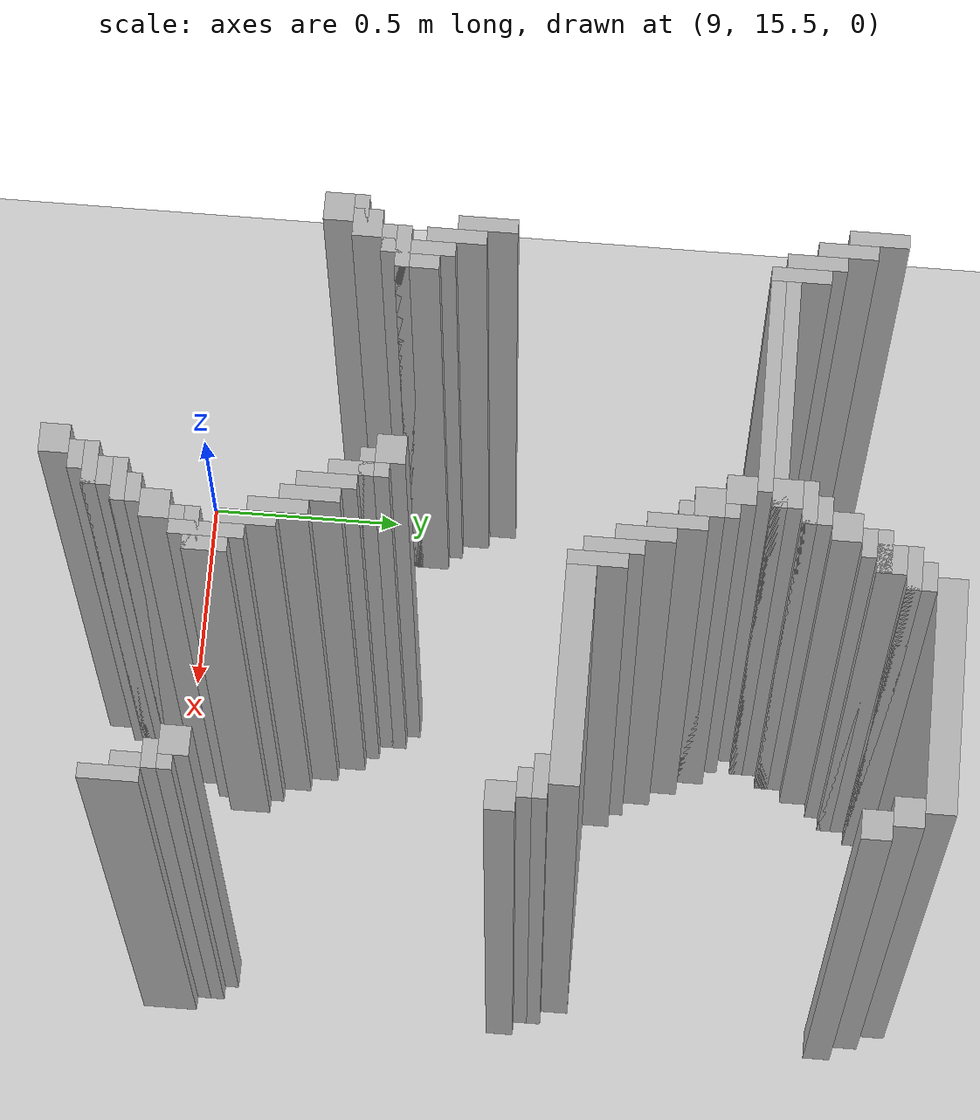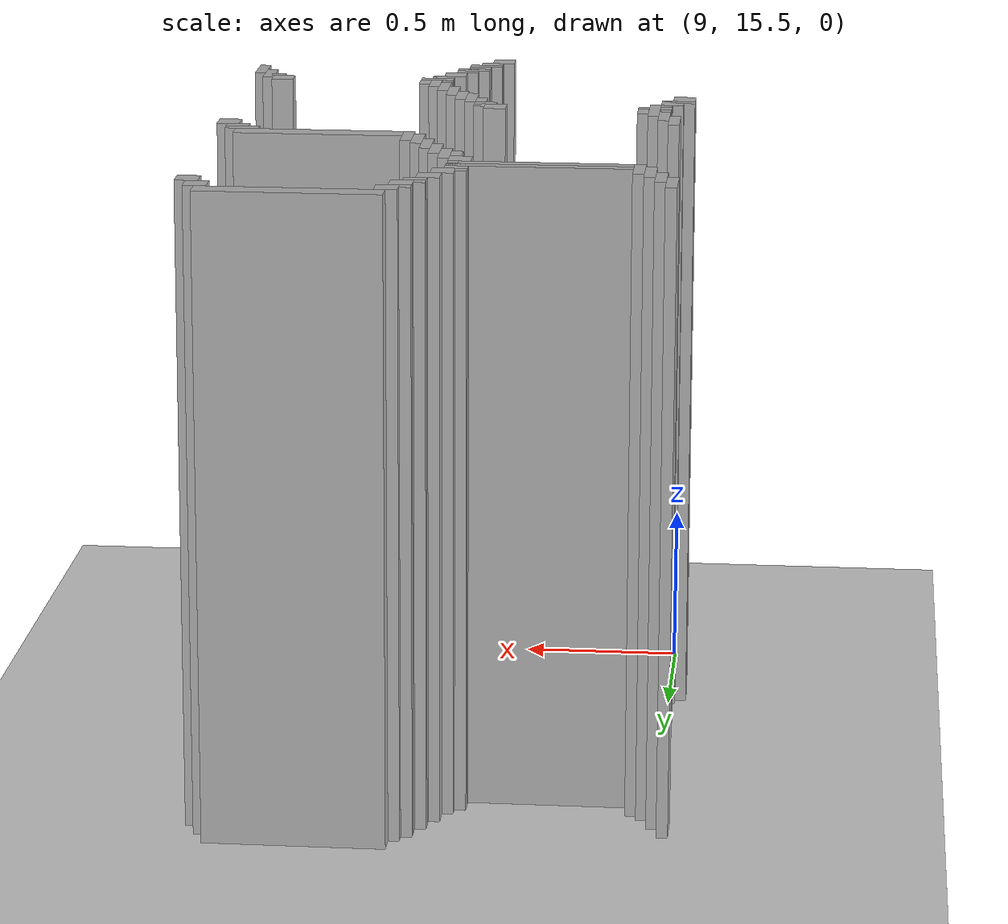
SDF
<sdf version="1.6">
 <world name="slam_world">
  <model name="ground_plane">
   <static>true</static>
   <link name="link">
    <collision name="collision">
     <geometry><plane><normal>0 0 1</normal><size>100 100</size></plane></geometry>
    </collision>
    <visual name="visual">
     <geometry><plane><normal>0 0 1</normal><size>100 100</size></plane></geometry>
     <material>
      <ambient>0.8 0.8 0.8 1</ambient>
      <diffuse>0.8 0.8 0.8 1</diffuse>
      <specular>0.8 0.8 0.8 1</specular>
     </material>
    </visual>
   </link>
  </model>
  <model name="wall_7">
   <static>true</static>
   <pose>10.058004640371228 17.366589327146173 1.0 0 0 0</pose>
   <link name="link">
    <collision name="collision">
     <geometry><box><size>0.5568445475638051 0.06960556844547564 2.0</size></box></geometry>
    </collision>
    <visual name="visual">
     <geometry><box><size>0.5568445475638051 0.06960556844547564 2.0</size></box></geometry>
     <material><ambient>0.5 0.5 0.5 1</ambient><diffuse>0.7 0.7 0.7 1</diffuse></material>
    </visual>
   </link>
  </model>
  <model name="wall_23">
   <static>true</static>
   <pose>9.779582366589327 17.296983758700694 1.0 0 0 0</pose>
   <link name="link">
    <collision name="collision">
     <geometry><box><size>0.06960556844547564 0.06960556844547564 2.0</size></box></geometry>
    </collision>
    <visual name="visual">
     <geometry><box><size>0.06960556844547564 0.06960556844547564 2.0</size></box></geometry>
     <material><ambient>0.5 0.5 0.5 1</ambient><diffuse>0.7 0.7 0.7 1</diffuse></material>
    </visual>
   </link>
  </model>
  <model name="wall_24">
   <static>true</static>
   <pose>10.336426914153131 17.296983758700694 1.0 0 0 0</pose>
   <link name="link">
    <collision name="collision">
     <geometry><box><size>0.06960556844547564 0.06960556844547564 2.0</size></box></geometry>
    </collision>
    <visual name="visual">
     <geometry><box><size>0.06960556844547564 0.06960556844547564 2.0</size></box></geometry>
     <material><ambient>0.5 0.5 0.5 1</ambient><diffuse>0.7 0.7 0.7 1</diffuse></material>
    </visual>
   </link>
  </model>
  <model name="wall_43">
   <static>true</static>
   <pose>9.762180974477959 17.279582366589327 1.0 0 0 0</pose>
   <link name="link">
    <collision name="collision">
     <geometry><box><size>0.10440835266821345 0.03480278422273782 2.0</size></box></geometry>
    </collision>
    <visual name="visual">
     <geometry><box><size>0.10440835266821345 0.03480278422273782 2.0</size></box></geometry>
     <material><ambient>0.5 0.5 0.5 1</ambient><diffuse>0.7 0.7 0.7 1</diffuse></material>
    </visual>
   </link>
  </model>
  <model name="wall_63">
   <static>true</static>
   <pose>9.744779582366588 17.22737819025522 1.0 0 0 0</pose>
   <link name="link">
    <collision name="collision">
     <geometry><box><size>0.06960556844547564 0.06960556844547564 2.0</size></box></geometry>
    </collision>
    <visual name="visual">
     <geometry><box><size>0.06960556844547564 0.06960556844547564 2.0</size></box></geometry>
     <material><ambient>0.5 0.5 0.5 1</ambient><diffuse>0.7 0.7 0.7 1</diffuse></material>
    </visual>
   </link>
  </model>
  <model name="wall_64">
   <static>true</static>
   <pose>10.37122969837587 17.22737819025522 1.0 0 0 0</pose>
   <link name="link">
    <collision name="collision">
     <geometry><box><size>0.06960556844547564 0.06960556844547564 2.0</size></box></geometry>
    </collision>
    <visual name="visual">
     <geometry><box><size>0.06960556844547564 0.06960556844547564 2.0</size></box></geometry>
     <material><ambient>0.5 0.5 0.5 1</ambient><diffuse>0.7 0.7 0.7 1</diffuse></material>
    </visual>
   </link>
  </model>
  <model name="wall_82">
   <static>true</static>
   <pose>8.961716937354987 17.157772621809745 1.0 0 0 0</pose>
   <link name="link">
    <collision name="collision">
     <geometry><box><size>0.03480278422273782 0.13921113689095127 2.0</size></box></geometry>
    </collision>
    <visual name="visual">
     <geometry><box><size>0.03480278422273782 0.13921113689095127 2.0</size></box></geometry>
     <material><ambient>0.5 0.5 0.5 1</ambient><diffuse>0.7 0.7 0.7 1</diffuse></material>
    </visual>
   </link>
  </model>
  <model name="wall_83">
   <static>true</static>
   <pose>9.72737819025522 17.209976798143853 1.0 0 0 0</pose>
   <link name="link">
    <collision name="collision">
     <geometry><box><size>0.10440835266821345 0.03480278422273782 2.0</size></box></geometry>
    </collision>
    <visual name="visual">
     <geometry><box><size>0.10440835266821345 0.03480278422273782 2.0</size></box></geometry>
     <material><ambient>0.5 0.5 0.5 1</ambient><diffuse>0.7 0.7 0.7 1</diffuse></material>
    </visual>
   </link>
  </model>
  <model name="wall_97">
   <static>true</static>
   <pose>9.70997679814385 17.17517401392111 1.0 0 0 0</pose>
   <link name="link">
    <collision name="collision">
     <geometry><box><size>0.06960556844547564 0.03480278422273782 2.0</size></box></geometry>
    </collision>
    <visual name="visual">
     <geometry><box><size>0.06960556844547564 0.03480278422273782 2.0</size></box></geometry>
     <material><ambient>0.5 0.5 0.5 1</ambient><diffuse>0.7 0.7 0.7 1</diffuse></material>
    </visual>
   </link>
  </model>
  <model name="wall_112">
   <static>true</static>
   <pose>8.996519721577727 17.08816705336427 1.0 0 0 0</pose>
   <link name="link">
    <collision name="collision">
     <geometry><box><size>0.03480278422273782 0.13921113689095127 2.0</size></box></geometry>
    </collision>
    <visual name="visual">
     <geometry><box><size>0.03480278422273782 0.13921113689095127 2.0</size></box></geometry>
     <material><ambient>0.5 0.5 0.5 1</ambient><diffuse>0.7 0.7 0.7 1</diffuse></material>
    </visual>
   </link>
  </model>
  <model name="wall_113">
   <static>true</static>
   <pose>9.675174013921113 17.122969837587007 1.0 0 0 0</pose>
   <link name="link">
    <collision name="collision">
     <geometry><box><size>0.06960556844547564 0.06960556844547564 2.0</size></box></geometry>
    </collision>
    <visual name="visual">
     <geometry><box><size>0.06960556844547564 0.06960556844547564 2.0</size></box></geometry>
     <material><ambient>0.5 0.5 0.5 1</ambient><diffuse>0.7 0.7 0.7 1</diffuse></material>
    </visual>
   </link>
  </model>
  <model name="wall_132">
   <static>true</static>
   <pose>9.031322505800464 17.01856148491879 1.0 0 0 0</pose>
   <link name="link">
    <collision name="collision">
     <geometry><box><size>0.03480278422273782 0.13921113689095127 2.0</size></box></geometry>
    </collision>
    <visual name="visual">
     <geometry><box><size>0.03480278422273782 0.13921113689095127 2.0</size></box></geometry>
     <material><ambient>0.5 0.5 0.5 1</ambient><diffuse>0.7 0.7 0.7 1</diffuse></material>
    </visual>
   </link>
  </model>
  <model name="wall_133">
   <static>true</static>
   <pose>9.640371229698376 17.053364269141532 1.0 0 0 0</pose>
   <link name="link">
    <collision name="collision">
     <geometry><box><size>0.06960556844547564 0.06960556844547564 2.0</size></box></geometry>
    </collision>
    <visual name="visual">
     <geometry><box><size>0.06960556844547564 0.06960556844547564 2.0</size></box></geometry>
     <material><ambient>0.5 0.5 0.5 1</ambient><diffuse>0.7 0.7 0.7 1</diffuse></material>
    </visual>
   </link>
  </model>
  <model name="wall_152">
   <static>true</static>
   <pose>9.066125290023201 16.983758700696054 1.0 0 0 0</pose>
   <link name="link">
    <collision name="collision">
     <geometry><box><size>0.03480278422273782 0.13921113689095127 2.0</size></box></geometry>
    </collision>
    <visual name="visual">
     <geometry><box><size>0.03480278422273782 0.13921113689095127 2.0</size></box></geometry>
     <material><ambient>0.5 0.5 0.5 1</ambient><diffuse>0.7 0.7 0.7 1</diffuse></material>
    </visual>
   </link>
  </model>
  <model name="wall_153">
   <static>true</static>
   <pose>9.622969837587007 17.035962877030162 1.0 0 0 0</pose>
   <link name="link">
    <collision name="collision">
     <geometry><box><size>0.10440835266821345 0.03480278422273782 2.0</size></box></geometry>
    </collision>
    <visual name="visual">
     <geometry><box><size>0.10440835266821345 0.03480278422273782 2.0</size></box></geometry>
     <material><ambient>0.5 0.5 0.5 1</ambient><diffuse>0.7 0.7 0.7 1</diffuse></material>
    </visual>
   </link>
  </model>
  <model name="wall_167">
   <static>true</static>
   <pose>9.605568445475638 16.983758700696054 1.0 0 0 0</pose>
   <link name="link">
    <collision name="collision">
     <geometry><box><size>0.06960556844547564 0.06960556844547564 2.0</size></box></geometry>
    </collision>
    <visual name="visual">
     <geometry><box><size>0.06960556844547564 0.06960556844547564 2.0</size></box></geometry>
     <material><ambient>0.5 0.5 0.5 1</ambient><diffuse>0.7 0.7 0.7 1</diffuse></material>
    </visual>
   </link>
  </model>
  <model name="wall_177">
   <static>true</static>
   <pose>9.361948955916473 16.966357308584687 1.0 0 0 0</pose>
   <link name="link">
    <collision name="collision">
     <geometry><box><size>0.5568445475638051 0.03480278422273782 2.0</size></box></geometry>
    </collision>
    <visual name="visual">
     <geometry><box><size>0.5568445475638051 0.03480278422273782 2.0</size></box></geometry>
     <material><ambient>0.5 0.5 0.5 1</ambient><diffuse>0.7 0.7 0.7 1</diffuse></material>
    </visual>
   </link>
  </model>
  <model name="wall_188">
   <static>true</static>
   <pose>9.344547563805104 16.93155452436195 1.0 0 0 0</pose>
   <link name="link">
    <collision name="collision">
     <geometry><box><size>0.5220417633410672 0.03480278422273782 2.0</size></box></geometry>
    </collision>
    <visual name="visual">
     <geometry><box><size>0.5220417633410672 0.03480278422273782 2.0</size></box></geometry>
     <material><ambient>0.5 0.5 0.5 1</ambient><diffuse>0.7 0.7 0.7 1</diffuse></material>
    </visual>
   </link>
  </model>
  <model name="wall_198">
   <static>true</static>
   <pose>9.605568445475638 16.87935034802784 1.0 0 0 0</pose>
   <link name="link">
    <collision name="collision">
     <geometry><box><size>0.06960556844547564 0.06960556844547564 2.0</size></box></geometry>
    </collision>
    <visual name="visual">
     <geometry><box><size>0.06960556844547564 0.06960556844547564 2.0</size></box></geometry>
     <material><ambient>0.5 0.5 0.5 1</ambient><diffuse>0.7 0.7 0.7 1</diffuse></material>
    </visual>
   </link>
  </model>
  <model name="wall_208">
   <static>true</static>
   <pose>9.657772621809745 16.809744779582367 1.0 0 0 0</pose>
   <link name="link">
    <collision name="collision">
     <geometry><box><size>0.03480278422273782 0.13921113689095127 2.0</size></box></geometry>
    </collision>
    <visual name="visual">
     <geometry><box><size>0.03480278422273782 0.13921113689095127 2.0</size></box></geometry>
     <material><ambient>0.5 0.5 0.5 1</ambient><diffuse>0.7 0.7 0.7 1</diffuse></material>
    </visual>
   </link>
  </model>
  <model name="wall_218">
   <static>true</static>
   <pose>9.640371229698376 16.809744779582367 1.0 0 0 0</pose>
   <link name="link">
    <collision name="collision">
     <geometry><box><size>0.06960556844547564 0.06960556844547564 2.0</size></box></geometry>
    </collision>
    <visual name="visual">
     <geometry><box><size>0.06960556844547564 0.06960556844547564 2.0</size></box></geometry>
     <material><ambient>0.5 0.5 0.5 1</ambient><diffuse>0.7 0.7 0.7 1</diffuse></material>
    </visual>
   </link>
  </model>
  <model name="wall_228">
   <static>true</static>
   <pose>9.692575406032482 16.74013921113689 1.0 0 0 0</pose>
   <link name="link">
    <collision name="collision">
     <geometry><box><size>0.03480278422273782 0.13921113689095127 2.0</size></box></geometry>
    </collision>
    <visual name="visual">
     <geometry><box><size>0.03480278422273782 0.13921113689095127 2.0</size></box></geometry>
     <material><ambient>0.5 0.5 0.5 1</ambient><diffuse>0.7 0.7 0.7 1</diffuse></material>
    </visual>
   </link>
  </model>
  <model name="wall_244">
   <static>true</static>
   <pose>9.72737819025522 16.670533642691414 1.0 0 0 0</pose>
   <link name="link">
    <collision name="collision">
     <geometry><box><size>0.03480278422273782 0.13921113689095127 2.0</size></box></geometry>
    </collision>
    <visual name="visual">
     <geometry><box><size>0.03480278422273782 0.13921113689095127 2.0</size></box></geometry>
     <material><ambient>0.5 0.5 0.5 1</ambient><diffuse>0.7 0.7 0.7 1</diffuse></material>
    </visual>
   </link>
  </model>
  <model name="wall_254">
   <static>true</static>
   <pose>9.762180974477959 16.60092807424594 1.0 0 0 0</pose>
   <link name="link">
    <collision name="collision">
     <geometry><box><size>0.03480278422273782 0.13921113689095127 2.0</size></box></geometry>
    </collision>
    <visual name="visual">
     <geometry><box><size>0.03480278422273782 0.13921113689095127 2.0</size></box></geometry>
     <material><ambient>0.5 0.5 0.5 1</ambient><diffuse>0.7 0.7 0.7 1</diffuse></material>
    </visual>
   </link>
  </model>
  <model name="wall_264">
   <static>true</static>
   <pose>9.796983758700696 16.5661252900232 1.0 0 0 0</pose>
   <link name="link">
    <collision name="collision">
     <geometry><box><size>0.03480278422273782 0.13921113689095127 2.0</size></box></geometry>
    </collision>
    <visual name="visual">
     <geometry><box><size>0.03480278422273782 0.13921113689095127 2.0</size></box></geometry>
     <material><ambient>0.5 0.5 0.5 1</ambient><diffuse>0.7 0.7 0.7 1</diffuse></material>
    </visual>
   </link>
  </model>
  <model name="wall_282">
   <static>true</static>
   <pose>10.075406032482599 16.531322505800464 1.0 0 0 0</pose>
   <link name="link">
    <collision name="collision">
     <geometry><box><size>0.5220417633410672 0.06960556844547564 2.0</size></box></geometry>
    </collision>
    <visual name="visual">
     <geometry><box><size>0.5220417633410672 0.06960556844547564 2.0</size></box></geometry>
     <material><ambient>0.5 0.5 0.5 1</ambient><diffuse>0.7 0.7 0.7 1</diffuse></material>
    </visual>
   </link>
  </model>
  <model name="wall_301">
   <static>true</static>
   <pose>10.319025522041763 16.479118329466356 1.0 0 0 0</pose>
   <link name="link">
    <collision name="collision">
     <geometry><box><size>0.10440835266821345 0.03480278422273782 2.0</size></box></geometry>
    </collision>
    <visual name="visual">
     <geometry><box><size>0.10440835266821345 0.03480278422273782 2.0</size></box></geometry>
     <material><ambient>0.5 0.5 0.5 1</ambient><diffuse>0.7 0.7 0.7 1</diffuse></material>
    </visual>
   </link>
  </model>
  <model name="wall_311">
   <static>true</static>
   <pose>10.336426914153131 16.44431554524362 1.0 0 0 0</pose>
   <link name="link">
    <collision name="collision">
     <geometry><box><size>0.06960556844547564 0.03480278422273782 2.0</size></box></geometry>
    </collision>
    <visual name="visual">
     <geometry><box><size>0.06960556844547564 0.03480278422273782 2.0</size></box></geometry>
     <material><ambient>0.5 0.5 0.5 1</ambient><diffuse>0.7 0.7 0.7 1</diffuse></material>
    </visual>
   </link>
  </model>
  <model name="wall_324">
   <static>true</static>
   <pose>10.37122969837587 16.39211136890951 1.0 0 0 0</pose>
   <link name="link">
    <collision name="collision">
     <geometry><box><size>0.06960556844547564 0.06960556844547564 2.0</size></box></geometry>
    </collision>
    <visual name="visual">
     <geometry><box><size>0.06960556844547564 0.06960556844547564 2.0</size></box></geometry>
     <material><ambient>0.5 0.5 0.5 1</ambient><diffuse>0.7 0.7 0.7 1</diffuse></material>
    </visual>
   </link>
  </model>
  <model name="wall_362">
   <static>true</static>
   <pose>8.996519721577727 16.25290023201856 1.0 0 0 0</pose>
   <link name="link">
    <collision name="collision">
     <geometry><box><size>0.03480278422273782 0.13921113689095127 2.0</size></box></geometry>
    </collision>
    <visual name="visual">
     <geometry><box><size>0.03480278422273782 0.13921113689095127 2.0</size></box></geometry>
     <material><ambient>0.5 0.5 0.5 1</ambient><diffuse>0.7 0.7 0.7 1</diffuse></material>
    </visual>
   </link>
  </model>
  <model name="wall_380">
   <static>true</static>
   <pose>9.031322505800464 16.183294663573086 1.0 0 0 0</pose>
   <link name="link">
    <collision name="collision">
     <geometry><box><size>0.03480278422273782 0.13921113689095127 2.0</size></box></geometry>
    </collision>
    <visual name="visual">
     <geometry><box><size>0.03480278422273782 0.13921113689095127 2.0</size></box></geometry>
     <material><ambient>0.5 0.5 0.5 1</ambient><diffuse>0.7 0.7 0.7 1</diffuse></material>
    </visual>
   </link>
  </model>
  <model name="wall_398">
   <static>true</static>
   <pose>9.066125290023201 16.09628770301624 1.0 0 0 0</pose>
   <link name="link">
    <collision name="collision">
     <geometry><box><size>0.03480278422273782 0.17401392111368907 2.0</size></box></geometry>
    </collision>
    <visual name="visual">
     <geometry><box><size>0.03480278422273782 0.17401392111368907 2.0</size></box></geometry>
     <material><ambient>0.5 0.5 0.5 1</ambient><diffuse>0.7 0.7 0.7 1</diffuse></material>
    </visual>
   </link>
  </model>
  <model name="wall_411">
   <static>true</static>
   <pose>9.100928074245939 16.09628770301624 1.0 0 0 0</pose>
   <link name="link">
    <collision name="collision">
     <geometry><box><size>0.03480278422273782 0.10440835266821345 2.0</size></box></geometry>
    </collision>
    <visual name="visual">
     <geometry><box><size>0.03480278422273782 0.10440835266821345 2.0</size></box></geometry>
     <material><ambient>0.5 0.5 0.5 1</ambient><diffuse>0.7 0.7 0.7 1</diffuse></material>
    </visual>
   </link>
  </model>
  <model name="wall_424">
   <static>true</static>
   <pose>9.5707656612529 16.07888631090487 1.0 0 0 0</pose>
   <link name="link">
    <collision name="collision">
     <geometry><box><size>0.06960556844547564 0.06960556844547564 2.0</size></box></geometry>
    </collision>
    <visual name="visual">
     <geometry><box><size>0.06960556844547564 0.06960556844547564 2.0</size></box></geometry>
     <material><ambient>0.5 0.5 0.5 1</ambient><diffuse>0.7 0.7 0.7 1</diffuse></material>
    </visual>
   </link>
  </model>
  <model name="wall_438">
   <static>true</static>
   <pose>9.066125290023201 16.061484918793504 1.0 0 0 0</pose>
   <link name="link">
    <collision name="collision">
     <geometry><box><size>0.10440835266821345 0.03480278422273782 2.0</size></box></geometry>
    </collision>
    <visual name="visual">
     <geometry><box><size>0.10440835266821345 0.03480278422273782 2.0</size></box></geometry>
     <material><ambient>0.5 0.5 0.5 1</ambient><diffuse>0.7 0.7 0.7 1</diffuse></material>
    </visual>
   </link>
  </model>
  <model name="wall_439">
   <static>true</static>
   <pose>9.622969837587007 16.009280742459396 1.0 0 0 0</pose>
   <link name="link">
    <collision name="collision">
     <geometry><box><size>0.03480278422273782 0.13921113689095127 2.0</size></box></geometry>
    </collision>
    <visual name="visual">
     <geometry><box><size>0.03480278422273782 0.13921113689095127 2.0</size></box></geometry>
     <material><ambient>0.5 0.5 0.5 1</ambient><diffuse>0.7 0.7 0.7 1</diffuse></material>
    </visual>
   </link>
  </model>
  <model name="wall_453">
   <static>true</static>
   <pose>9.048723897911833 16.026682134570766 1.0 0 0 0</pose>
   <link name="link">
    <collision name="collision">
     <geometry><box><size>0.06960556844547564 0.03480278422273782 2.0</size></box></geometry>
    </collision>
    <visual name="visual">
     <geometry><box><size>0.06960556844547564 0.03480278422273782 2.0</size></box></geometry>
     <material><ambient>0.5 0.5 0.5 1</ambient><diffuse>0.7 0.7 0.7 1</diffuse></material>
    </visual>
   </link>
  </model>
  <model name="wall_454">
   <static>true</static>
   <pose>9.605568445475638 16.026682134570766 1.0 0 0 0</pose>
   <link name="link">
    <collision name="collision">
     <geometry><box><size>0.06960556844547564 0.03480278422273782 2.0</size></box></geometry>
    </collision>
    <visual name="visual">
     <geometry><box><size>0.06960556844547564 0.03480278422273782 2.0</size></box></geometry>
     <material><ambient>0.5 0.5 0.5 1</ambient><diffuse>0.7 0.7 0.7 1</diffuse></material>
    </visual>
   </link>
  </model>
  <model name="wall_468">
   <static>true</static>
   <pose>9.013921113689095 15.974477958236658 1.0 0 0 0</pose>
   <link name="link">
    <collision name="collision">
     <geometry><box><size>0.06960556844547564 0.06960556844547564 2.0</size></box></geometry>
    </collision>
    <visual name="visual">
     <geometry><box><size>0.06960556844547564 0.06960556844547564 2.0</size></box></geometry>
     <material><ambient>0.5 0.5 0.5 1</ambient><diffuse>0.7 0.7 0.7 1</diffuse></material>
    </visual>
   </link>
  </model>
  <model name="wall_469">
   <static>true</static>
   <pose>9.657772621809745 15.93967517401392 1.0 0 0 0</pose>
   <link name="link">
    <collision name="collision">
     <geometry><box><size>0.03480278422273782 0.13921113689095127 2.0</size></box></geometry>
    </collision>
    <visual name="visual">
     <geometry><box><size>0.03480278422273782 0.13921113689095127 2.0</size></box></geometry>
     <material><ambient>0.5 0.5 0.5 1</ambient><diffuse>0.7 0.7 0.7 1</diffuse></material>
    </visual>
   </link>
  </model>
  <model name="wall_483">
   <static>true</static>
   <pose>8.996519721577727 15.95707656612529 1.0 0 0 0</pose>
   <link name="link">
    <collision name="collision">
     <geometry><box><size>0.10440835266821345 0.03480278422273782 2.0</size></box></geometry>
    </collision>
    <visual name="visual">
     <geometry><box><size>0.10440835266821345 0.03480278422273782 2.0</size></box></geometry>
     <material><ambient>0.5 0.5 0.5 1</ambient><diffuse>0.7 0.7 0.7 1</diffuse></material>
    </visual>
   </link>
  </model>
  <model name="wall_484">
   <static>true</static>
   <pose>9.692575406032482 15.904872389791183 1.0 0 0 0</pose>
   <link name="link">
    <collision name="collision">
     <geometry><box><size>0.03480278422273782 0.13921113689095127 2.0</size></box></geometry>
    </collision>
    <visual name="visual">
     <geometry><box><size>0.03480278422273782 0.13921113689095127 2.0</size></box></geometry>
     <material><ambient>0.5 0.5 0.5 1</ambient><diffuse>0.7 0.7 0.7 1</diffuse></material>
    </visual>
   </link>
  </model>
  <model name="wall_494">
   <static>true</static>
   <pose>8.979118329466356 15.904872389791183 1.0 0 0 0</pose>
   <link name="link">
    <collision name="collision">
     <geometry><box><size>0.06960556844547564 0.06960556844547564 2.0</size></box></geometry>
    </collision>
    <visual name="visual">
     <geometry><box><size>0.06960556844547564 0.06960556844547564 2.0</size></box></geometry>
     <material><ambient>0.5 0.5 0.5 1</ambient><diffuse>0.7 0.7 0.7 1</diffuse></material>
    </visual>
   </link>
  </model>
  <model name="wall_508">
   <static>true</static>
   <pose>9.72737819025522 15.835266821345707 1.0 0 0 0</pose>
   <link name="link">
    <collision name="collision">
     <geometry><box><size>0.03480278422273782 0.13921113689095127 2.0</size></box></geometry>
    </collision>
    <visual name="visual">
     <geometry><box><size>0.03480278422273782 0.13921113689095127 2.0</size></box></geometry>
     <material><ambient>0.5 0.5 0.5 1</ambient><diffuse>0.7 0.7 0.7 1</diffuse></material>
    </visual>
   </link>
  </model>
  <model name="wall_531">
   <static>true</static>
   <pose>9.762180974477959 15.765661252900232 1.0 0 0 0</pose>
   <link name="link">
    <collision name="collision">
     <geometry><box><size>0.03480278422273782 0.13921113689095127 2.0</size></box></geometry>
    </collision>
    <visual name="visual">
     <geometry><box><size>0.03480278422273782 0.13921113689095127 2.0</size></box></geometry>
     <material><ambient>0.5 0.5 0.5 1</ambient><diffuse>0.7 0.7 0.7 1</diffuse></material>
    </visual>
   </link>
  </model>
  <model name="wall_546">
   <static>true</static>
   <pose>9.796983758700696 15.678654292343387 1.0 0 0 0</pose>
   <link name="link">
    <collision name="collision">
     <geometry><box><size>0.03480278422273782 0.17401392111368907 2.0</size></box></geometry>
    </collision>
    <visual name="visual">
     <geometry><box><size>0.03480278422273782 0.17401392111368907 2.0</size></box></geometry>
     <material><ambient>0.5 0.5 0.5 1</ambient><diffuse>0.7 0.7 0.7 1</diffuse></material>
    </visual>
   </link>
  </model>
  <model name="wall_560">
   <static>true</static>
   <pose>9.831786542923433 15.678654292343387 1.0 0 0 0</pose>
   <link name="link">
    <collision name="collision">
     <geometry><box><size>0.03480278422273782 0.10440835266821345 2.0</size></box></geometry>
    </collision>
    <visual name="visual">
     <geometry><box><size>0.03480278422273782 0.10440835266821345 2.0</size></box></geometry>
     <material><ambient>0.5 0.5 0.5 1</ambient><diffuse>0.7 0.7 0.7 1</diffuse></material>
    </visual>
   </link>
  </model>
  <model name="wall_571">
   <static>true</static>
   <pose>10.301624129930394 15.661252900232018 1.0 0 0 0</pose>
   <link name="link">
    <collision name="collision">
     <geometry><box><size>0.06960556844547564 0.06960556844547564 2.0</size></box></geometry>
    </collision>
    <visual name="visual">
     <geometry><box><size>0.06960556844547564 0.06960556844547564 2.0</size></box></geometry>
     <material><ambient>0.5 0.5 0.5 1</ambient><diffuse>0.7 0.7 0.7 1</diffuse></material>
    </visual>
   </link>
  </model>
  <model name="wall_587">
   <static>true</static>
   <pose>9.796983758700696 15.64385150812065 1.0 0 0 0</pose>
   <link name="link">
    <collision name="collision">
     <geometry><box><size>0.10440835266821345 0.03480278422273782 2.0</size></box></geometry>
    </collision>
    <visual name="visual">
     <geometry><box><size>0.10440835266821345 0.03480278422273782 2.0</size></box></geometry>
     <material><ambient>0.5 0.5 0.5 1</ambient><diffuse>0.7 0.7 0.7 1</diffuse></material>
    </visual>
   </link>
  </model>
  <model name="wall_588">
   <static>true</static>
   <pose>10.3538283062645 15.591647331786543 1.0 0 0 0</pose>
   <link name="link">
    <collision name="collision">
     <geometry><box><size>0.03480278422273782 0.13921113689095127 2.0</size></box></geometry>
    </collision>
    <visual name="visual">
     <geometry><box><size>0.03480278422273782 0.13921113689095127 2.0</size></box></geometry>
     <material><ambient>0.5 0.5 0.5 1</ambient><diffuse>0.7 0.7 0.7 1</diffuse></material>
    </visual>
   </link>
  </model>
  <model name="wall_604">
   <static>true</static>
   <pose>9.779582366589327 15.609048723897912 1.0 0 0 0</pose>
   <link name="link">
    <collision name="collision">
     <geometry><box><size>0.06960556844547564 0.03480278422273782 2.0</size></box></geometry>
    </collision>
    <visual name="visual">
     <geometry><box><size>0.06960556844547564 0.03480278422273782 2.0</size></box></geometry>
     <material><ambient>0.5 0.5 0.5 1</ambient><diffuse>0.7 0.7 0.7 1</diffuse></material>
    </visual>
   </link>
  </model>
  <model name="wall_605">
   <static>true</static>
   <pose>10.336426914153131 15.609048723897912 1.0 0 0 0</pose>
   <link name="link">
    <collision name="collision">
     <geometry><box><size>0.06960556844547564 0.03480278422273782 2.0</size></box></geometry>
    </collision>
    <visual name="visual">
     <geometry><box><size>0.06960556844547564 0.03480278422273782 2.0</size></box></geometry>
     <material><ambient>0.5 0.5 0.5 1</ambient><diffuse>0.7 0.7 0.7 1</diffuse></material>
    </visual>
   </link>
  </model>
  <model name="wall_620">
   <static>true</static>
   <pose>9.744779582366588 15.556844547563804 1.0 0 0 0</pose>
   <link name="link">
    <collision name="collision">
     <geometry><box><size>0.06960556844547564 0.06960556844547564 2.0</size></box></geometry>
    </collision>
    <visual name="visual">
     <geometry><box><size>0.06960556844547564 0.06960556844547564 2.0</size></box></geometry>
     <material><ambient>0.5 0.5 0.5 1</ambient><diffuse>0.7 0.7 0.7 1</diffuse></material>
    </visual>
   </link>
  </model>
  <model name="wall_621">
   <static>true</static>
   <pose>10.38863109048724 15.522041763341067 1.0 0 0 0</pose>
   <link name="link">
    <collision name="collision">
     <geometry><box><size>0.03480278422273782 0.13921113689095127 2.0</size></box></geometry>
    </collision>
    <visual name="visual">
     <geometry><box><size>0.03480278422273782 0.13921113689095127 2.0</size></box></geometry>
     <material><ambient>0.5 0.5 0.5 1</ambient><diffuse>0.7 0.7 0.7 1</diffuse></material>
    </visual>
   </link>
  </model>
  <model name="wall_636">
   <static>true</static>
   <pose>9.70997679814385 15.48723897911833 1.0 0 0 0</pose>
   <link name="link">
    <collision name="collision">
     <geometry><box><size>0.06960556844547564 0.06960556844547564 2.0</size></box></geometry>
    </collision>
    <visual name="visual">
     <geometry><box><size>0.06960556844547564 0.06960556844547564 2.0</size></box></geometry>
     <material><ambient>0.5 0.5 0.5 1</ambient><diffuse>0.7 0.7 0.7 1</diffuse></material>
    </visual>
   </link>
  </model>
  <model name="wall_652">
   <static>true</static>
   <pose>9.692575406032482 15.46983758700696 1.0 0 0 0</pose>
   <link name="link">
    <collision name="collision">
     <geometry><box><size>0.10440835266821345 0.03480278422273782 2.0</size></box></geometry>
    </collision>
    <visual name="visual">
     <geometry><box><size>0.10440835266821345 0.03480278422273782 2.0</size></box></geometry>
     <material><ambient>0.5 0.5 0.5 1</ambient><diffuse>0.7 0.7 0.7 1</diffuse></material>
    </visual>
   </link>
  </model>
  <model name="wall_665">
   <static>true</static>
   <pose>9.675174013921113 15.417633410672853 1.0 0 0 0</pose>
   <link name="link">
    <collision name="collision">
     <geometry><box><size>0.06960556844547564 0.06960556844547564 2.0</size></box></geometry>
    </collision>
    <visual name="visual">
     <geometry><box><size>0.06960556844547564 0.06960556844547564 2.0</size></box></geometry>
     <material><ambient>0.5 0.5 0.5 1</ambient><diffuse>0.7 0.7 0.7 1</diffuse></material>
    </visual>
   </link>
  </model>
  <model name="wall_679">
   <static>true</static>
   <pose>9.657772621809745 15.400232018561484 1.0 0 0 0</pose>
   <link name="link">
    <collision name="collision">
     <geometry><box><size>0.10440835266821345 0.03480278422273782 2.0</size></box></geometry>
    </collision>
    <visual name="visual">
     <geometry><box><size>0.10440835266821345 0.03480278422273782 2.0</size></box></geometry>
     <material><ambient>0.5 0.5 0.5 1</ambient><diffuse>0.7 0.7 0.7 1</diffuse></material>
    </visual>
   </link>
  </model>
  <model name="wall_689">
   <static>true</static>
   <pose>9.640371229698376 15.365429234338746 1.0 0 0 0</pose>
   <link name="link">
    <collision name="collision">
     <geometry><box><size>0.06960556844547564 0.03480278422273782 2.0</size></box></geometry>
    </collision>
    <visual name="visual">
     <geometry><box><size>0.06960556844547564 0.03480278422273782 2.0</size></box></geometry>
     <material><ambient>0.5 0.5 0.5 1</ambient><diffuse>0.7 0.7 0.7 1</diffuse></material>
    </visual>
   </link>
  </model>
  <model name="wall_701">
   <static>true</static>
   <pose>9.605568445475638 15.31322505800464 1.0 0 0 0</pose>
   <link name="link">
    <collision name="collision">
     <geometry><box><size>0.06960556844547564 0.06960556844547564 2.0</size></box></geometry>
    </collision>
    <visual name="visual">
     <geometry><box><size>0.06960556844547564 0.06960556844547564 2.0</size></box></geometry>
     <material><ambient>0.5 0.5 0.5 1</ambient><diffuse>0.7 0.7 0.7 1</diffuse></material>
    </visual>
   </link>
  </model>
 </world>
</sdf>
